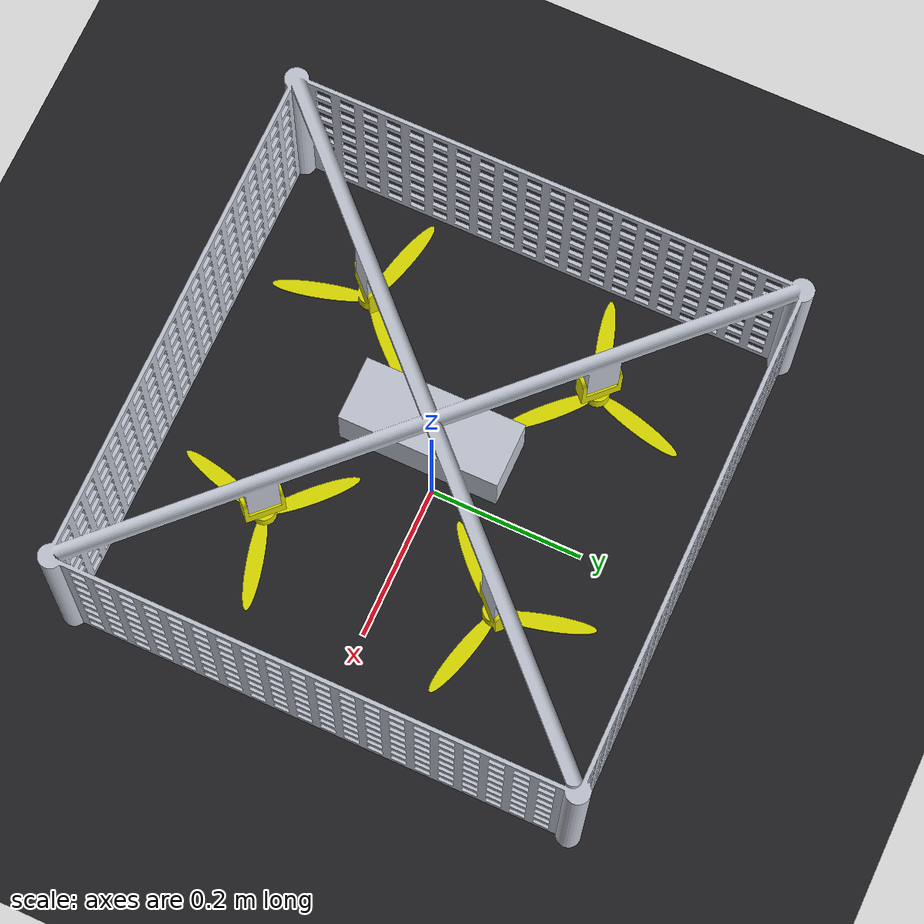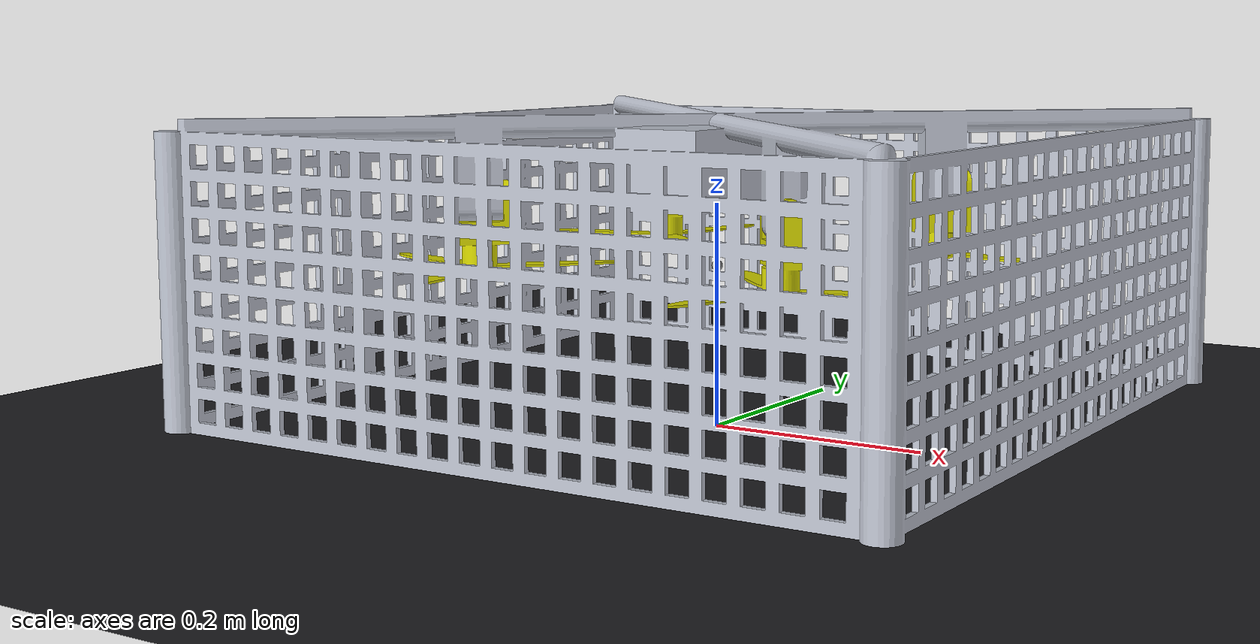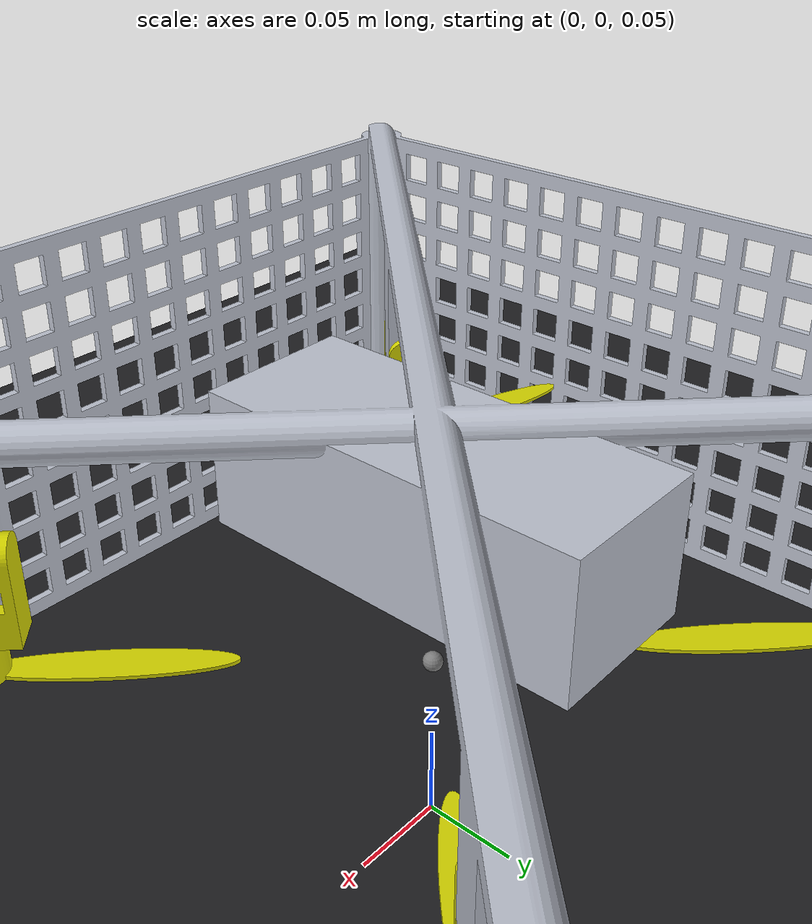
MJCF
<mujoco model="Palletrone">
  <include file="Palletrone.xml"/>

  <visual>
    <headlight diffuse="0.6 0.6 0.6" ambient="0.1 0.1 0.1" specular="0 0 0"/>
    <rgba haze="0.3 0.3 0.3 1"/>
    <global azimuth="45" elevation="35.264" ellipsoidinertia="false"/>
  </visual>

  <asset>
    <texture type="skybox" builtin="gradient" rgb1="0.5 0.5 0.5" rgb2="0 0 0" width="512" height="3072"/>
    <texture type="2d" name="groundplane" builtin="checker" mark="edge" rgb1="0.15 0.15 0.17" rgb2="0.1 0.1 0.1"
      markrgb="0.3 0.3 0.3" width="100" height="100"/>
    <material name="groundplane" texture="groundplane" texuniform="true" texrepeat="2 2" reflectance="0"/>
  </asset>

  <worldbody>
    <light pos="0 0 10" dir="0 0 -1" directional="true"/>
    <geom name="floor" size="0 0 0.05" type="plane" material="groundplane" contype="1" conaffinity="1"/>

  </worldbody>
</mujoco>

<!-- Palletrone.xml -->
<mujoco model="Palletrone">
  <asset>
    <mesh name="body_mesh"       file="BODY.stl"/>
    <mesh name="servo_prop_mesh" file="PROP.stl"/>
  </asset>

  <worldbody>
    <body name="base" pos="0 0 0.145">
      <freejoint name="root"/>
      <inertial pos="0 0 0" quat="1 0 0 0" mass="4.00" diaginertia="0.360091 0.360702 0.660702"/>
      <geom name="base_vis" type="mesh" mesh="body_mesh" rgba="0.75 0.77 0.82 1" contype="1" conaffinity="1"/>

      <site name="imu" pos="0 0 0" quat="1 0 0 0"/>

      <body name="servo1" pos="0.148492 0.148492 0.145" quat="0.9238795 0 0 0.3826834">
        <joint name="j_servo1" type="hinge" axis="1 0 0" pos="0 0 -0.075" limited="true" range="-0.785 0.785" damping="0.1"/>
        <body name="prop1_body" pos="0 0 -0.075">
          <geom name="servo1_vis" type="mesh" mesh="servo_prop_mesh" mass="0.2"
                quat="0.7071068 0 0 0.7071068"
                rgba="0.85 0.85 0.0 1" contype="0" conaffinity="0"/>
          <site name="prop1_site" pos="0 0 0" size="0.004" type="sphere"/>
        </body>
      </body>

      <body name="servo2" pos="-0.148492 0.148492 0.145" quat="0.3826834 0 0 0.9238795">
        <joint name="j_servo2" type="hinge" axis="1 0 0" pos="0 0 -0.075" limited="true" range="-0.785 0.785" damping="0.1"/>
        <body name="prop2_body" pos="0 0 -0.075">
          <geom name="servo2_vis" type="mesh" mesh="servo_prop_mesh" mass="0.2"
                quat="0.7071068 0 0 0.7071068"
                rgba="0.85 0.85 0.0 1" contype="0" conaffinity="0"/>
          <site name="prop2_site" pos="0 0 0" size="0.004" type="sphere"/>
        </body>
      </body>

      <body name="servo3" pos="-0.148492 -0.148492 0.145" quat="0.3826834 0 0 -0.9238795">
        <joint name="j_servo3" type="hinge" axis="1 0 0" pos="0 0 -0.075" limited="true" range="-0.785 0.785" damping="0.1"/>
        <body name="prop3_body" pos="0 0 -0.075">
          <geom name="servo3_vis" type="mesh" mesh="servo_prop_mesh" mass="0.2"
                quat="0.7071068 0 0 0.7071068"
                rgba="0.85 0.85 0.0 1" contype="0" conaffinity="0"/>
          <site name="prop3_site" pos="0 0 0" size="0.004" type="sphere"/>
        </body>
      </body>

      <body name="servo4" pos="0.148492 -0.148492 0.145" quat="0.9238795 0 0 -0.3826834">
        <joint name="j_servo4" type="hinge" axis="1 0 0" pos="0 0 -0.075" limited="true" range="-0.785 0.785" damping="0.1"/>
        <body name="prop4_body" pos="0 0 -0.075">
          <geom name="servo4_vis" type="mesh" mesh="servo_prop_mesh" mass="0.2"
                quat="0.7071068 0 0 0.7071068"
                rgba="0.85 0.85 0.0 1" contype="0" conaffinity="0"/>
          <site name="prop4_site" pos="0 0 0" size="0.004" type="sphere"/>
        </body>
      </body>
    </body>
  </worldbody>

  <actuator>
    <general name="BLDC1" site="prop1_site" gear="0 0 1 0 0  0.02"  ctrlrange="0 50"/>
    <general name="BLDC2" site="prop2_site" gear="0 0 1 0 0 -0.02"  ctrlrange="0 50"/>
    <general name="BLDC3" site="prop3_site" gear="0 0 1 0 0  0.02"  ctrlrange="0 50"/>
    <general name="BLDC4" site="prop4_site" gear="0 0 1 0 0 -0.02"  ctrlrange="0 50"/>

    <position name="servo1_pos" joint="j_servo1" kp="180" kv="0.02" ctrlrange="-0.9 0.9"/>
    <position name="servo2_pos" joint="j_servo2" kp="180" kv="0.02" ctrlrange="-0.9 0.9"/>
    <position name="servo3_pos" joint="j_servo3" kp="180" kv="0.02" ctrlrange="-0.9 0.9"/>
    <position name="servo4_pos" joint="j_servo4" kp="180" kv="0.02" ctrlrange="-0.9 0.9"/>
  </actuator>

  <sensor>
    <framequat   name="body_quat"   objtype="site" objname="imu"/>
    <gyro        name="body_gyro"   site="imu"/>
    <framepos    name="base_pos"    objtype="body" objname="base"/>
    <framelinvel name="base_linvel" objtype="body" objname="base"/>

    <jointpos name="servo1_angle" joint="j_servo1"/>
    <jointpos name="servo2_angle" joint="j_servo2"/>
    <jointpos name="servo3_angle" joint="j_servo3"/>
    <jointpos name="servo4_angle" joint="j_servo4"/>
  </sensor>
</mujoco>
